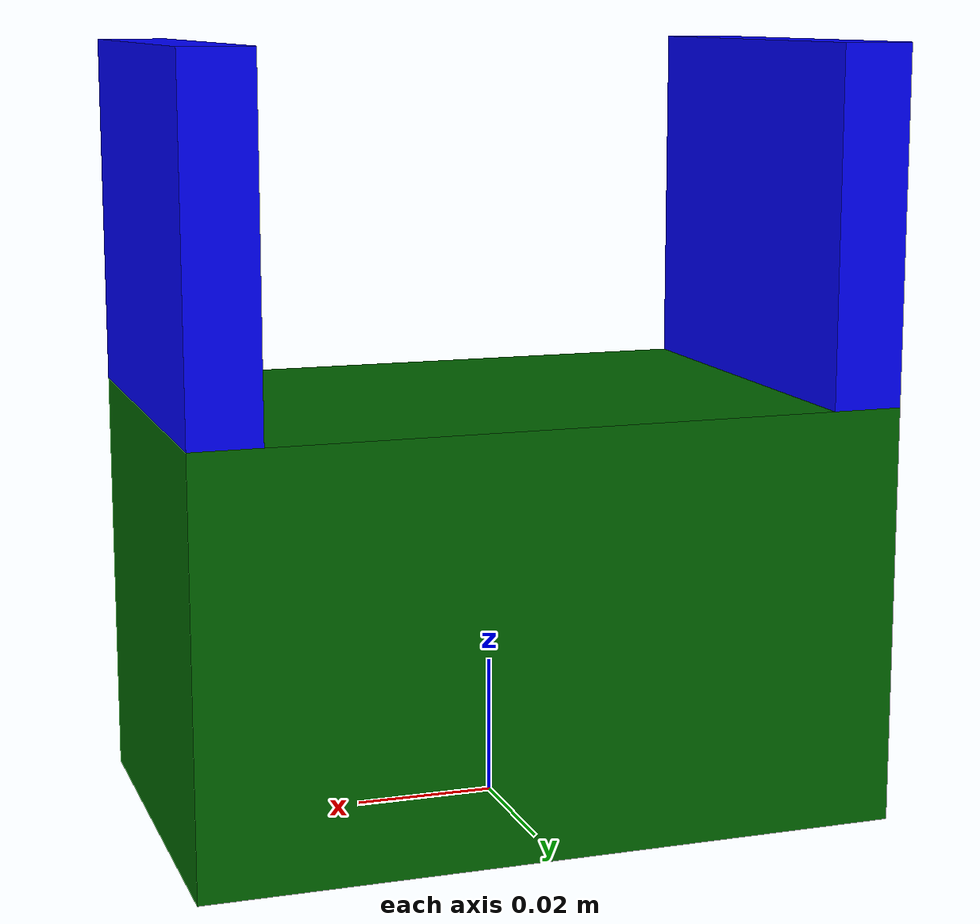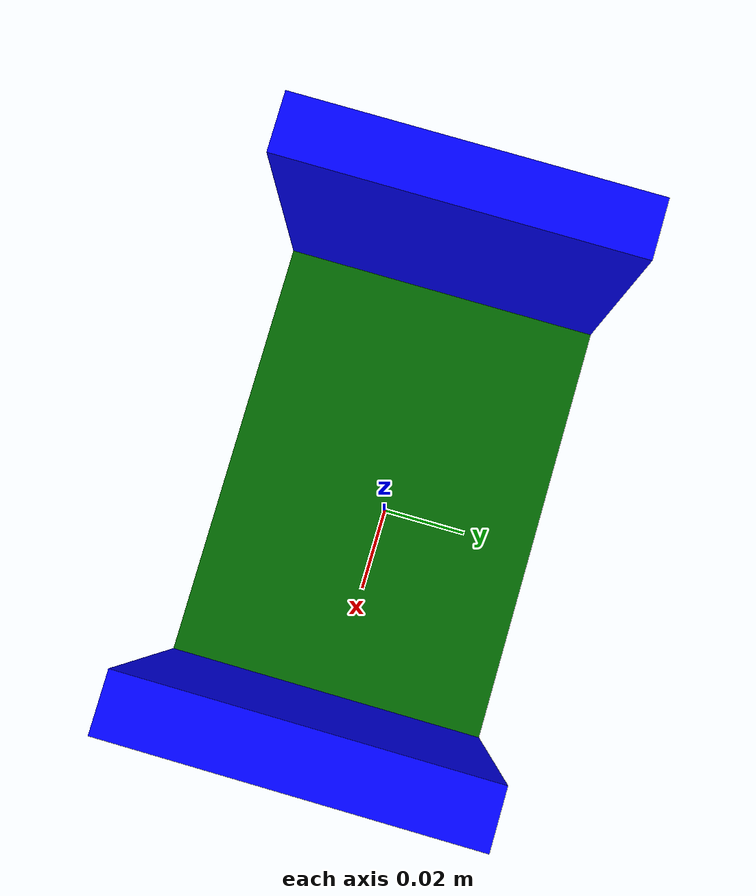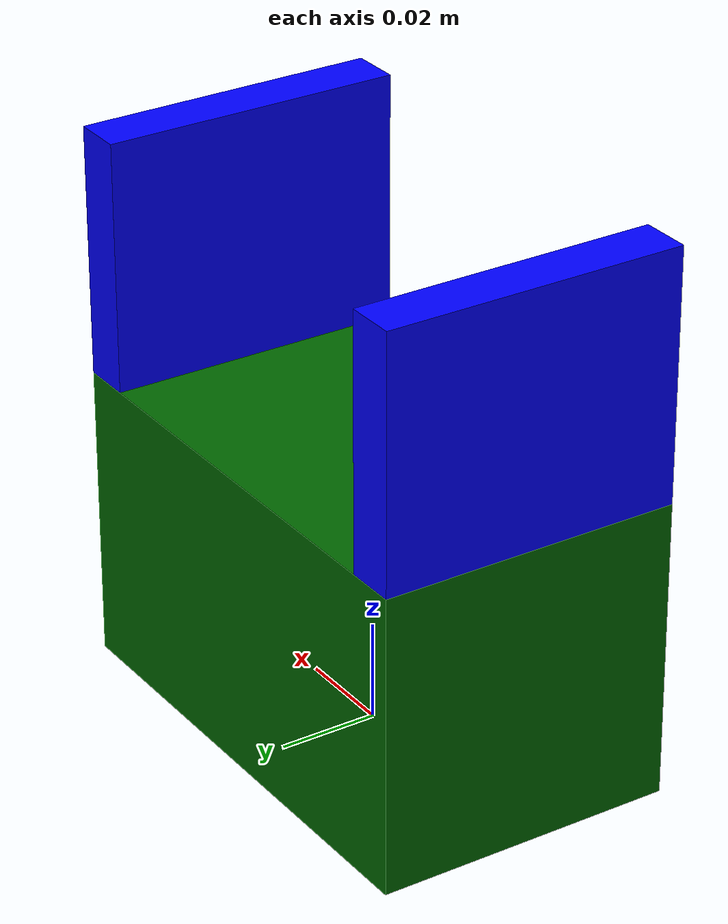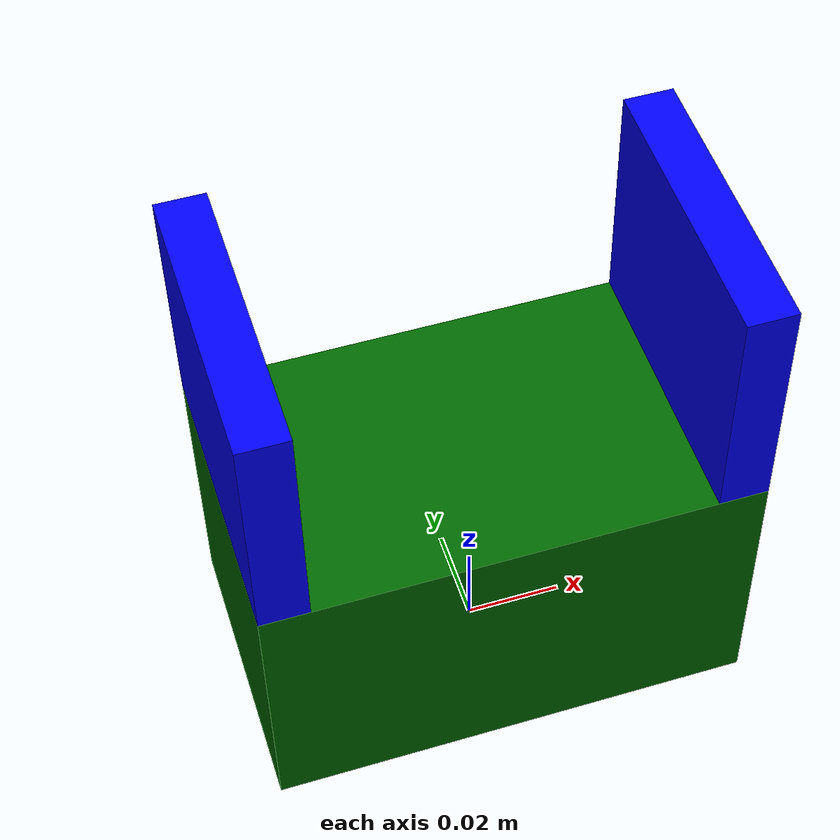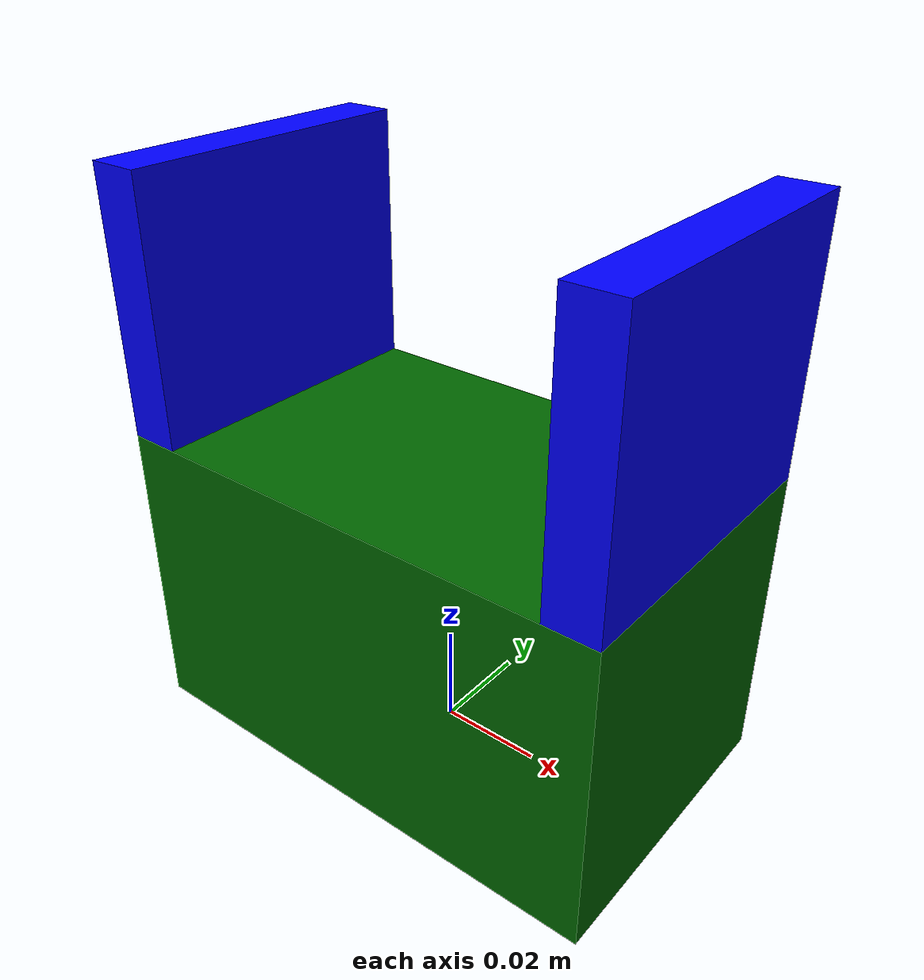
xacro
<?xml version="1.0" encoding="utf-8"?>

<robot xmlns:xacro="http://www.ros.org/wiki/xacro">

    <material name="dark_green">
        <color rgba="0 0.4 0 1" />
    </material>
    <material name="blue">
        <color rgba="0 0 1 1" />
    </material>

    <link name="gripper_base_link">
        <inertial>
            <origin xyz="0 0 0.03" rpy="0 0 0" />
            <mass value="0.3" />
            <inertia
                ixx="0.00018"
                ixy="0.0"
                ixz="0.0"
                iyy="0.00034"
                iyz="0.0"
                izz="0.00034" />
        </inertial>
        <visual>
            <geometry>
                <box size="0.10 0.06 0.06" />
            </geometry>
            <origin xyz="0 0 0.03" rpy="0 0 0" />
            <material name="dark_green" />
        </visual>
        <collision>
            <geometry>
                <box size="0.10 0.06 0.06" />
            </geometry>
            <origin xyz="0 0 0.03" rpy="0 0 0" />
        </collision>
    </link>

    <link name="gripper_left_finger_link">
        <inertial>
            <origin xyz="0 0 0.025" rpy="0 0 0" />
            <mass value="0.03" />
            <inertia
                ixx="1.5e-05"
                ixy="0.0"
                ixz="0.0"
                iyy="6.5e-06"
                iyz="0.0"
                izz="9.3e-06" />
        </inertial>
        <visual>
            <geometry>
                <box size="0.01 0.06 0.05" />
            </geometry>
            <origin xyz="0 0 0.025" rpy="0 0 0" />
            <material name="blue" />
        </visual>
        <collision>
            <geometry>
                <box size="0.01 0.06 0.05" />
            </geometry>
            <origin xyz="0 0 0.025" rpy="0 0 0" />
        </collision>
    </link>

    <link name="gripper_right_finger_link">
        <inertial>
            <origin xyz="0 0 0.025" rpy="0 0 0" />
            <mass value="0.03" />
            <inertia
                ixx="1.5e-05"
                ixy="0.0"
                ixz="0.0"
                iyy="6.5e-06"
                iyz="0.0"
                izz="9.3e-06" />
        </inertial>
        <visual>
            <geometry>
                <box size="0.01 0.06 0.05" />
            </geometry>
            <origin xyz="0 0 0.025" rpy="0 0 0" />
            <material name="blue" />
        </visual>
        <collision>
            <geometry>
                <box size="0.01 0.06 0.05" />
            </geometry>
            <origin xyz="0 0 0.025" rpy="0 0 0" />
        </collision>
    </link>

    <!-- 抓取点的位置，用虚拟连杆占位 -->
    <link name="grip_center_link">
        <!-- 没有视觉和碰撞，只有惯性属性 -->
        <inertial>
            <origin xyz="0 0 0" rpy="0 0 0" />
            <mass value="0.0001" />
            <inertia ixx="1e-06" ixy="0" ixz="0" iyy="1e-06" iyz="0" izz="1e-06" />
        </inertial>
    </link>

    <joint name="gripper_left_finger_joint" type="prismatic">
        <parent link="gripper_base_link" />
        <child link="gripper_left_finger_link" />
        <origin xyz="-0.045 0 0.06" rpy="0 0 0" />
        <axis xyz="1 0 0" />
        <limit effort="1000.0" velocity="1.0" lower="0.0" upper="0.04" />
    </joint>

    <joint name="gripper_right_finger_joint" type="prismatic">
        <parent link="gripper_base_link" />
        <child link="gripper_right_finger_link" />
        <origin xyz="0.045 0 0.06" rpy="0 0 0" />
        <axis xyz="1 0 0" />
        <mimic joint="gripper_left_finger_joint" multiplier="-1.0" />
        <limit effort="1000.0" velocity="1.0" lower="-0.04" upper="0.0" />
    </joint>

    <!-- 抓取点 -->
    <joint name="grip_center_joint" type="fixed">
        <parent link="gripper_base_link" />
        <child link="grip_center_link" />
        <origin xyz="0 0 0.09" rpy="0 0 0" />
    </joint>

</robot>
